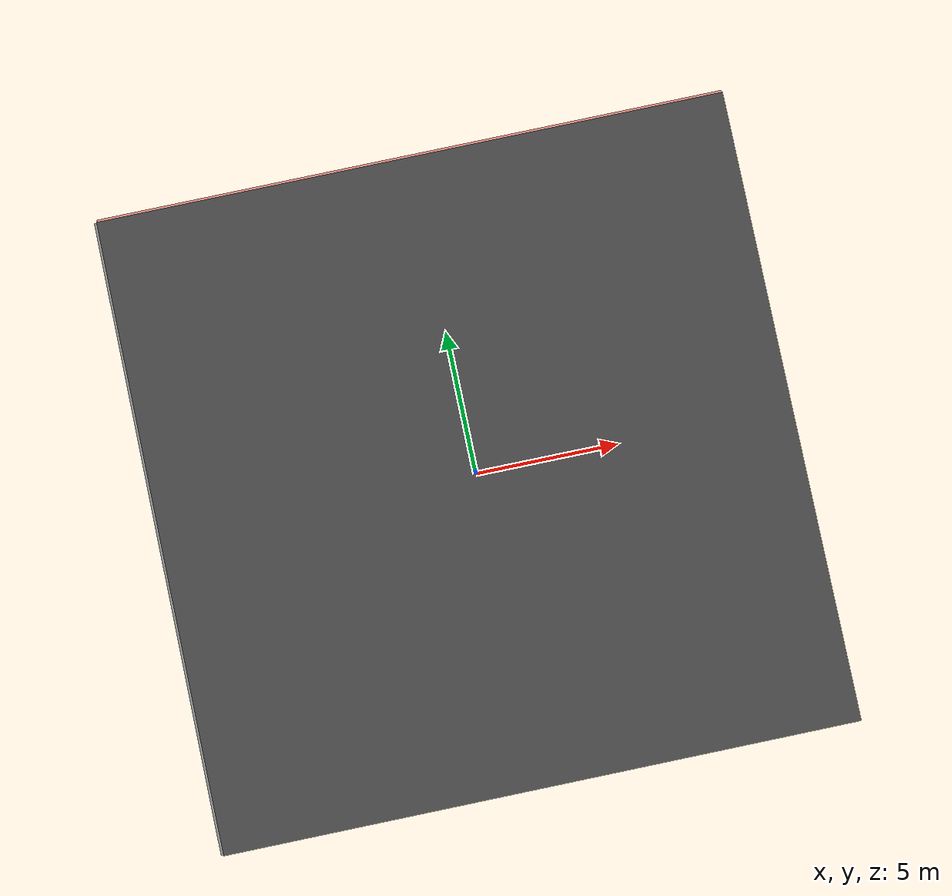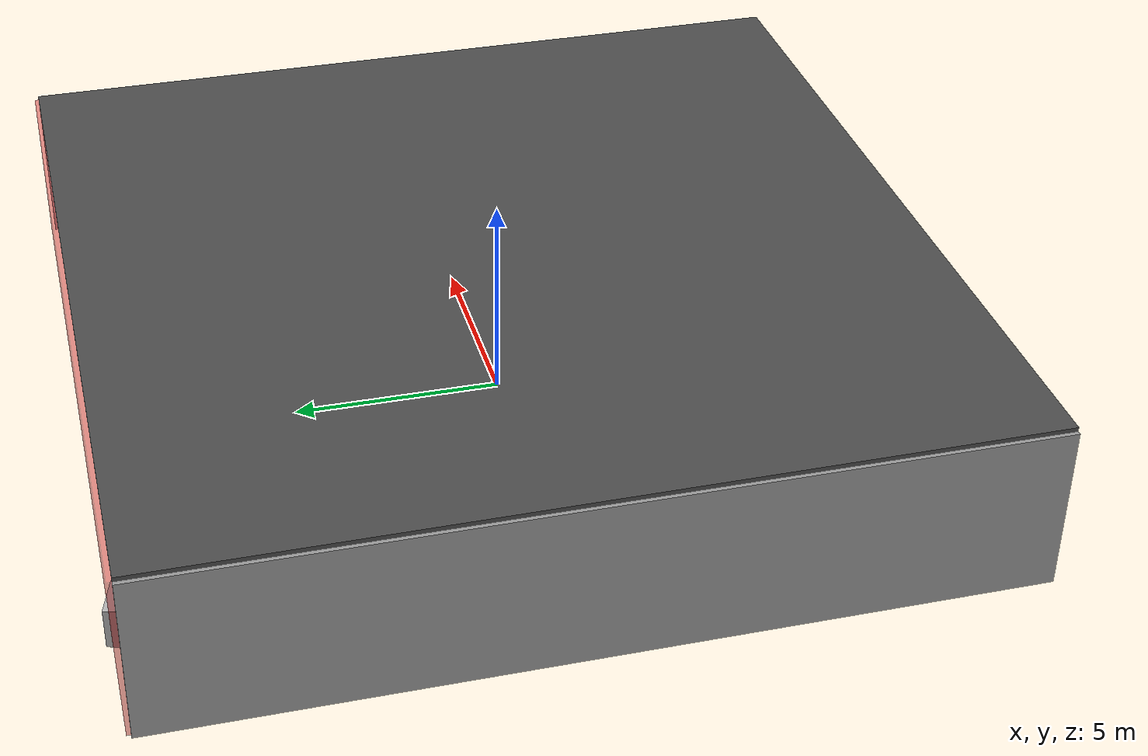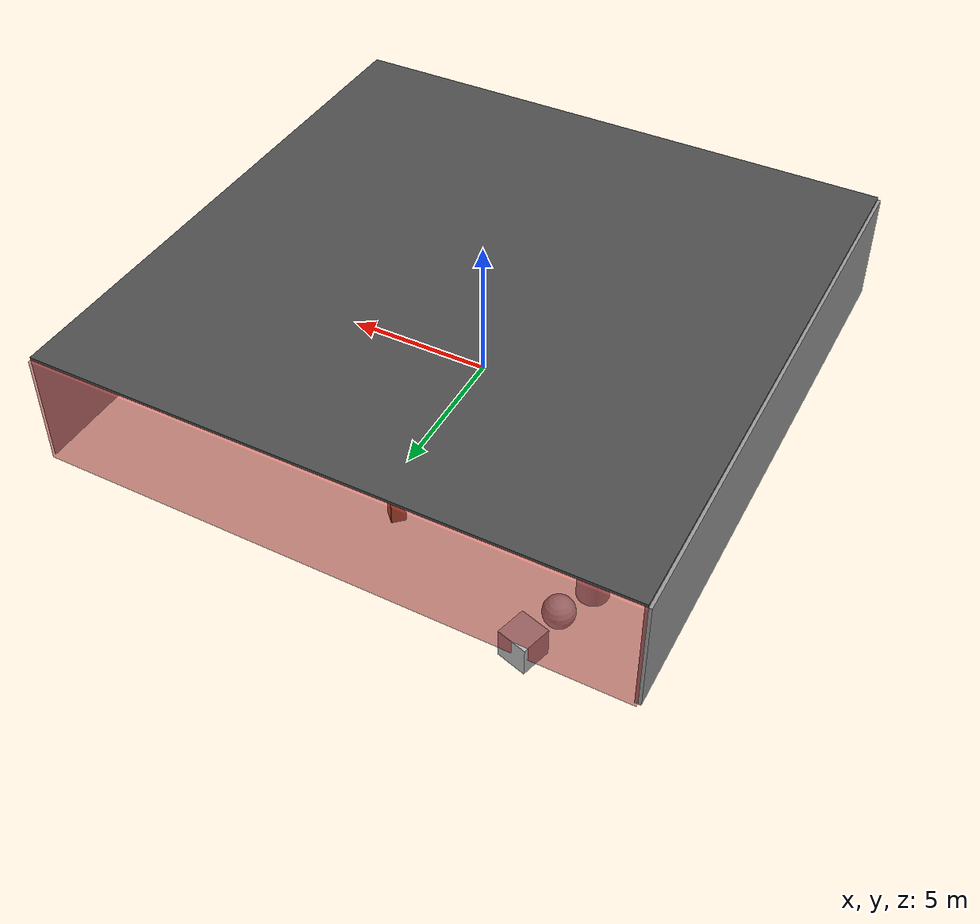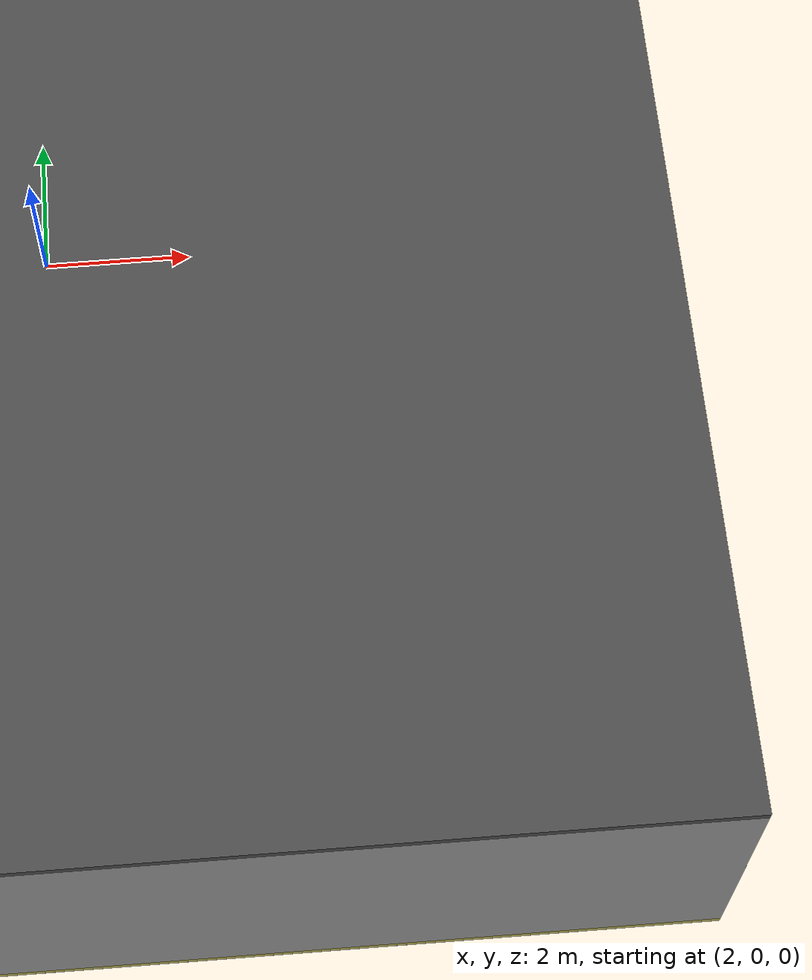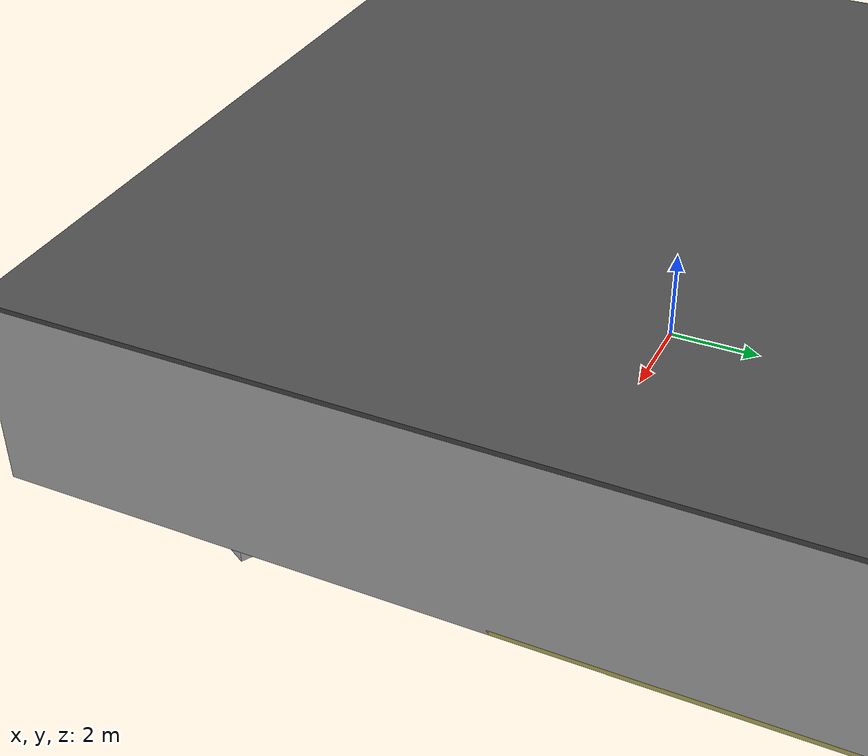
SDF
<sdf version="1.4">
 <world name="default">
  <physics type="ode">
   <max_step_size>0.001</max_step_size>
   <real_time_factor>1</real_time_factor>
   <real_time_update_rate>1000</real_time_update_rate>
   <gravity>0 0 -9.8</gravity>
  </physics>
  <scene><ambient>0.4 0.4 0.4 1</ambient><background>0.7 0.7 0.7 1</background><shadows>1</shadows></scene>
  <model name="Surrounding">
   <static>1</static>
   <link name="Ceiling">
    <collision name="Ceiling_Collision"><geometry><box><size>20 20 0.1</size></box></geometry></collision>
    <visual name="Ceiling_Visual">
     <geometry><box><size>20 20 0.1</size></box></geometry>
     <material>
      <script><uri>file://media/materials/scripts/gazebo.material</uri><name>Gazebo/Road</name></script>
     </material>
    </visual>
    <pose>0 0 4.05 0 0 0</pose>
   </link>
   <link name="Wall_South">
    <collision name="Wall_South_Collision">
     <geometry><box><size>20 0 4</size></box></geometry>
     <pose>0 0 2 0 -0 0</pose>
    </collision>
    <visual name="Wall_South_Visual">
     <pose>0 0 2 0 -0 0</pose>
     <geometry><box><size>20 0 4</size></box></geometry>
     <material>
      <script><uri>file://media/materials/scripts/gazebo.material</uri><name>Gazebo/GreyGradientSky</name></script>
     </material>
    </visual>
    <velocity_decay><linear>0</linear><angular>0</angular></velocity_decay>
    <pose>0 -10 0 0 -0 0</pose>
   </link>
   <link name="Wall_East">
    <collision name="Wall_21_Collision">
     <geometry><box><size>20 0 4</size></box></geometry>
     <pose>0 0 2 0 -0 0</pose>
    </collision>
    <visual name="Wall_21_Visual">
     <pose>0 0 2 0 -0 0</pose>
     <geometry><box><size>20 0 4</size></box></geometry>
     <material>
      <script><uri>file://media/materials/scripts/gazebo.material</uri><name>Gazebo/PioneerBody</name></script>
     </material>
    </visual>
    <velocity_decay><linear>0</linear><angular>0</angular></velocity_decay>
    <pose>10 0 0 0 -0 1.5708</pose>
   </link>
   <link name="Wall_North">
    <collision name="Wall_22_Collision">
     <geometry><box><size>20 0.2 4</size></box></geometry>
     <pose>0 0 2 0 -0 0</pose>
    </collision>
    <visual name="Wall_22_Visual">
     <pose>0 0 2 0 -0 0</pose>
     <geometry><box><size>20 0.2 4</size></box></geometry>
     <material>
      <script><uri>file://media/materials/scripts/gazebo.material</uri><name>Gazebo/RedTransparent</name></script>
     </material>
    </visual>
    <velocity_decay><linear>0</linear><angular>0</angular></velocity_decay>
    <pose>0 10 0 0 -0 0</pose>
   </link>
   <link name="Wall_West">
    <collision name="Wall_23_Collision">
     <geometry><box><size>20 0.2 4</size></box></geometry>
     <pose>0 0 2 0 -0 0</pose>
    </collision>
    <visual name="Wall_23_Visual">
     <pose>0 0 2 0 -0 0</pose>
     <geometry><box><size>20 0.2 4</size></box></geometry>
     <material>
      <script><uri>file://media/materials/scripts/gazebo.material</uri><name>Gazebo/Grey</name></script>
     </material>
    </visual>
    <velocity_decay><linear>0</linear><angular>0</angular></velocity_decay>
    <pose>-10 0 0 0 0 -1.5708</pose>
   </link>
   <link name="Ground_link">
    <collision name="collision">
     <pose>0 0 .05 0 -0 0</pose>
     <geometry><box><size>20 20 0.1</size></box></geometry>
    </collision>
    <visual name="visual">
     <pose>0 0 .05 0 -0 0</pose>
     <geometry><box><size>20 20 0.1</size></box></geometry>
     <material>
      <script>
       <uri>file://media/materials/scripts/gazebo.material</uri>
       <name>Gazebo/YellowTransparent</name>
      </script>
     </material>
    </visual>
   </link>
   <static>1</static>
  </model>
  <spherical_coordinates>
   <surface_model>EARTH_WGS84</surface_model>
   <latitude_deg>0</latitude_deg>
   <longitude_deg>0</longitude_deg>
   <elevation>0</elevation>
   <heading_deg>0</heading_deg>
  </spherical_coordinates>
  <light name="lightball_0" type="diffuse">
   <diffuse>0.8 0.8 0.8 1</diffuse>
   <specular>0.2 0.2 0.2 1</specular>
   <attenuation>
    <range>100</range>
    <constant>0.7</constant>
    <linear>0.01</linear>
    <quadratic>0.001</quadratic>
   </attenuation>
   <direction>-0.5 0.1 -0.9</direction>
   <pose>9.81573280358 -0.677854194364 1.25146909152 0 0 0</pose>
  </light>
  <light name="lightball_1" type="diffuse">
   <diffuse>0.8 0.8 0.8 1</diffuse>
   <specular>0.2 0.2 0.2 1</specular>
   <attenuation>
    <range>100</range>
    <constant>0.7</constant>
    <linear>0.01</linear>
    <quadratic>0.001</quadratic>
   </attenuation>
   <direction>-0.5 0.1 -0.9</direction>
   <pose>5.59421062461 -2.52281999643 2.60214932315 0 0 0</pose>
  </light>
  <light name="lightball_2" type="diffuse">
   <diffuse>0.8 0.8 0.8 1</diffuse>
   <specular>0.2 0.2 0.2 1</specular>
   <attenuation>
    <range>100</range>
    <constant>0.7</constant>
    <linear>0.01</linear>
    <quadratic>0.001</quadratic>
   </attenuation>
   <direction>-0.5 0.1 -0.9</direction>
   <pose>3.355909632 -2.84408816347 3.80494073281 0 0 0</pose>
  </light>
  <light name="lightball_3" type="diffuse">
   <diffuse>0.8 0.8 0.8 1</diffuse>
   <specular>0.2 0.2 0.2 1</specular>
   <attenuation>
    <range>100</range>
    <constant>0.7</constant>
    <linear>0.01</linear>
    <quadratic>0.001</quadratic>
   </attenuation>
   <direction>-0.5 0.1 -0.9</direction>
   <pose>-3.49957943511 1.65615761087 0.684738309069 0 0 0</pose>
  </light>
  <light name="lightball_4" type="diffuse">
   <diffuse>0.8 0.8 0.8 1</diffuse>
   <specular>0.2 0.2 0.2 1</specular>
   <attenuation>
    <range>100</range>
    <constant>0.7</constant>
    <linear>0.01</linear>
    <quadratic>0.001</quadratic>
   </attenuation>
   <direction>-0.5 0.1 -0.9</direction>
   <pose>-5.46212818186 4.22201070216 2.57813331061 0 0 0</pose>
  </light>
  <light name="lightball_5" type="diffuse">
   <diffuse>0.8 0.8 0.8 1</diffuse>
   <specular>0.2 0.2 0.2 1</specular>
   <attenuation>
    <range>100</range>
    <constant>0.7</constant>
    <linear>0.01</linear>
    <quadratic>0.001</quadratic>
   </attenuation>
   <direction>-0.5 0.1 -0.9</direction>
   <pose>1.48725607232 8.87089836732 3.88735221364 0 0 0</pose>
  </light>
  <light name="lightball_6" type="diffuse">
   <diffuse>0.8 0.8 0.8 1</diffuse>
   <specular>0.2 0.2 0.2 1</specular>
   <attenuation>
    <range>100</range>
    <constant>0.7</constant>
    <linear>0.01</linear>
    <quadratic>0.001</quadratic>
   </attenuation>
   <direction>-0.5 0.1 -0.9</direction>
   <pose>6.16081681713 -8.24025714108 2.9433405285 0 0 0</pose>
  </light>
  <light name="lightball_7" type="diffuse">
   <diffuse>0.8 0.8 0.8 1</diffuse>
   <specular>0.2 0.2 0.2 1</specular>
   <attenuation>
    <range>100</range>
    <constant>0.7</constant>
    <linear>0.01</linear>
    <quadratic>0.001</quadratic>
   </attenuation>
   <direction>-0.5 0.1 -0.9</direction>
   <pose>3.65046620022 9.4528276299 1.35852679284 0 0 0</pose>
  </light>
  <include>
   <uri>model://textured_shapes</uri>
   <pose>-6.78394134923 8.17254431553 0 0 0 2.86257811268</pose>
  </include>
  <include>
   <uri>model://textured_shapes</uri>
   <pose>-5.13439755647 -6.97390623494 0 0 0 1.62836523511</pose>
  </include>
  <include><uri>model://cabinet</uri><pose>-1.46799668043 4.75725078541 0 0 0 3.12555468801</pose></include>
  <include><uri>model://cabinet</uri><pose>-0.871374505038 7.16719612552 0 0 0 0.768034976692</pose></include>
  <include><uri>model://table</uri><pose>4.13777409736 -3.86045960308 0 0 0 3.06168239702</pose></include>
  <include><uri>model://cabinet</uri><pose>7.27996357279 -6.72264880864 0 0 0 0.0571624991539</pose></include>
  <include>
   <uri>model://textured_shapes</uri>
   <pose>7.77749231847 -4.46485648202 0 0 0 1.05121830145</pose>
  </include>
  <include><uri>model://cabinet</uri><pose>6.90851430894 -2.1581566207 0 0 0 2.95039339371</pose></include>
 </world>
</sdf>

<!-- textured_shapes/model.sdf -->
<sdf version="1.6">
  <model name="textured_shapes">
    <pose>0 0 0.5 0 0 0</pose>
    <link name="box">
      <pose>0 -1.5 0 0 0 0</pose>
      <collision name="collision">
        <geometry>
          <box>
            <size>1 1 1</size>
          </box>
        </geometry>
      </collision>
      <visual name="visual">
        <geometry>
          <box>
            <size>1 1 1</size>
          </box>
        </geometry>
        <material>
          <script>
            <uri>model://../model_source/models/textured_shapes/materials/scripts</uri>
            <uri>model://../model_source/models/textured_shapes/materials/textures</uri>
            <name>TexturedShape/Squares</name>
          </script>
        </material>
      </visual>
    </link>
    <link name="sphere">
      <collision name="collision">
        <geometry>
          <sphere>
            <radius>0.5</radius>
          </sphere>
        </geometry>
      </collision>
      <visual name="visual">
        <geometry>
          <sphere>
            <radius>0.5</radius>
          </sphere>
        </geometry>
        <material>
          <script>
            <uri>model://../model_source/models/textured_shapes/materials/scripts</uri>
            <uri>model://../model_source/models/textured_shapes/materials/textures</uri>
            <name>TexturedShape/Squares</name>
          </script>
        </material>
      </visual>
    </link>
    <link name="cylinder">
      <pose>0 1.5 0 0 0 0</pose>
      <collision name="collision">
        <geometry>
          <cylinder>
            <radius>0.5</radius>
            <length>1</length>
          </cylinder>
        </geometry>
      </collision>
      <visual name="visual">
        <geometry>
          <cylinder>
            <radius>0.5</radius>
            <length>1</length>
          </cylinder>
        </geometry>
        <material>
          <script>
            <uri>model://../model_source/models/textured_shapes/materials/scripts</uri>
            <uri>model://../model_source/models/textured_shapes/materials/textures</uri>
            <name>TexturedShape/Squares</name>
          </script>
        </material>
      </visual>
    </link>
  </model>
</sdf>

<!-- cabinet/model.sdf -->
<sdf version="1.5">
  <model name="cabinet">
    <static>true</static>
    <link name="cabinet_bottom_plate">
      <inertial>
        <pose>0 0 -1 0 0 0</pose>
        <inertia>
          <ixx>2.050000</ixx>
          <ixy>0</ixy>
          <ixz>0</ixz>
          <iyy>2.050000</iyy>
          <iyz>0</iyz>
          <izz>2.050000</izz>
        </inertia>
        <mass>25.000000</mass>
      </inertial>
      <collision name="cabinet_bottom_plate_geom">
        <pose>0 0 0.010000 0 0 0</pose>
        <geometry>
          <box>
            <size>0.450000 0.450000 0.020000</size>
          </box>
        </geometry>
      </collision>
      <visual name="cabinet_bottom_plate_geom_visual">
        <pose>0 0 0.010000 0 0 0</pose>
        <geometry>
          <box>
            <size>0.450000 0.450000 0.020000</size>
          </box>
        </geometry>
        <material>
          <script>
            <uri>model://media/materials/scripts/gazebo.material</uri>
            <name>Gazebo/Wood</name>
          </script>
        </material>
      </visual>
      <collision name="cabinet_bottom_plate_geom_cabinet_back_plate">
        <pose>0.235000 0 0.510000 0 0 0</pose>
        <geometry>
          <box>
            <size>0.020000 0.450000 1.020000</size>
          </box>
        </geometry>
      </collision>
      <visual name="cabinet_bottom_plate_geom_cabinet_back_plate_visual">
        <pose>0.235000 0 0.510000 0 0 0</pose>
        <geometry>
          <box>
            <size>0.020000 0.450000 1.020000</size>
          </box>
        </geometry>
        <material>
          <script>
            <uri>model://media/materials/scripts/gazebo.material</uri>
            <name>Gazebo/Wood</name>
          </script>
        </material>
      </visual>
      <collision name="cabinet_bottom_plate_geom_cabinet_left_plate">
        <pose>0 0.235000 0.510000 0 0 0</pose>
        <geometry>
          <box>
            <size>0.450000 0.020000 1.020000</size>
          </box>
        </geometry>
      </collision>
      <visual name="cabinet_bottom_plate_geom_cabinet_left_plate_visual">
        <pose>0 0.235000 0.510000 0 0 0</pose>
        <geometry>
          <box>
            <size>0.450000 0.020000 1.020000</size>
          </box>
        </geometry>
        <material>
          <script>
            <uri>model://media/materials/scripts/gazebo.material</uri>
            <name>Gazebo/Wood</name>
          </script>
        </material>
      </visual>
      <collision name="cabinet_bottom_plate_geom_cabinet_middle_plate">
        <pose>0 0 0.510000 0 0 0</pose>
        <geometry>
          <box>
            <size>0.450000 0.450000 0.020000</size>
          </box>
        </geometry>
      </collision>
      <visual name="cabinet_bottom_plate_geom_cabinet_middle_plate_visual">
        <pose>0 0 0.510000 0 0 0</pose>
        <geometry>
          <box>
            <size>0.450000 0.450000 0.020000</size>
          </box>
        </geometry>
        <material>
          <script>
            <uri>model://media/materials/scripts/gazebo.material</uri>
            <name>Gazebo/Wood</name>
          </script>
        </material>
      </visual>
      <collision name="cabinet_bottom_plate_geom_cabinet_right_plate">
        <pose>0 -0.235000 0.510000 0 0 0</pose>
        <geometry>
          <box>
            <size>0.450000 0.020000 1.020000</size>
          </box>
        </geometry>
      </collision>
      <visual name="cabinet_bottom_plate_geom_cabinet_right_plate_visual">
        <pose>0 -0.235000 0.510000 0 0 0</pose>
        <geometry>
          <box>
            <size>0.450000 0.020000 1.020000</size>
          </box>
        </geometry>
        <material>
          <script>
            <uri>model://media/materials/scripts/gazebo.material</uri>
            <name>Gazebo/Wood</name>
          </script>
        </material>
      </visual>
      <collision name="cabinet_bottom_plate_geom_cabinet_top_plate">
        <pose>0 0 1.010000 0 0 0</pose>
        <geometry>
          <box>
            <size>0.450000 0.450000 0.020000</size>
          </box>
        </geometry>
      </collision>
      <visual name="cabinet_bottom_plate_geom_cabinet_top_plate_visual">
        <pose>0 0 1.010000 0 0 0</pose>
        <geometry>
          <box>
            <size>0.450000 0.450000 0.020000</size>
          </box>
        </geometry>
        <material>
          <script>
            <uri>model://media/materials/scripts/gazebo.material</uri>
            <name>Gazebo/Wood</name>
          </script>
        </material>
      </visual>
    </link>
  </model>
</sdf>

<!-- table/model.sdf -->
<sdf version="1.5">
  <model name="table">
    <static>true</static>
    <link name="link">
      <collision name="surface">
        <pose>0 0 1.0 0 0 0</pose>
        <geometry>
          <box>
            <size>1.5 0.8 0.03</size>
          </box>
        </geometry>
        <surface>
          <friction>
            <ode>
              <mu>0.6</mu>
              <mu2>0.6</mu2>
            </ode>
          </friction>
        </surface>
      </collision>
      <visual name="visual1">
        <pose>0 0 1.0 0 0 0</pose>
        <geometry>
          <box>
            <size>1.5 0.8 0.03</size>
          </box>
        </geometry>
        <material>
          <script>
            <uri>model://media/materials/scripts/gazebo.material</uri>
            <name>Gazebo/Wood</name>
          </script>
        </material>
      </visual>
      <collision name="front_left_leg">
        <pose>0.68 0.38 0.5 0 0 0</pose>
        <geometry>
          <cylinder>
            <radius>0.02</radius>
            <length>1.0</length>
          </cylinder>
        </geometry>
      </collision>
      <visual name="front_left_leg">
        <pose>0.68 0.38 0.5 0 0 0</pose>
        <geometry>
          <cylinder>
            <radius>0.02</radius>
            <length>1.0</length>
          </cylinder>
        </geometry>
        <material>
          <script>
            <uri>model://media/materials/scripts/gazebo.material</uri>
            <name>Gazebo/Grey</name>
          </script>
        </material>
      </visual>
      <collision name="front_right_leg">
        <pose>0.68 -0.38 0.5 0 0 0</pose>
        <geometry>
          <cylinder>
            <radius>0.02</radius>
            <length>1.0</length>
          </cylinder>
        </geometry>
      </collision>
      <visual name="front_right_leg">
        <pose>0.68 -0.38 0.5 0 0 0</pose>
        <geometry>
          <cylinder>
            <radius>0.02</radius>
            <length>1.0</length>
          </cylinder>
        </geometry>
        <material>
          <script>
            <uri>model://media/materials/scripts/gazebo.material</uri>
            <name>Gazebo/Grey</name>
          </script>
        </material>
      </visual>
      <collision name="back_right_leg">
        <pose>-0.68 -0.38 0.5 0 0 0</pose>
        <geometry>
          <cylinder>
            <radius>0.02</radius>
            <length>1.0</length>
          </cylinder>
        </geometry>
      </collision>
      <visual name="back_right_leg">
        <pose>-0.68 -0.38 0.5 0 0 0</pose>
        <geometry>
          <cylinder>
            <radius>0.02</radius>
            <length>1.0</length>
          </cylinder>
        </geometry>
        <material>
          <script>
            <uri>model://media/materials/scripts/gazebo.material</uri>
            <name>Gazebo/Grey</name>
          </script>
        </material>
      </visual>
      <collision name="back_left_leg">
        <pose>-0.68 0.38 0.5 0 0 0</pose>
        <geometry>
          <cylinder>
            <radius>0.02</radius>
            <length>1.0</length>
          </cylinder>
        </geometry>
      </collision>
      <visual name="back_left_leg">
        <pose>-0.68 0.38 0.5 0 0 0</pose>
        <geometry>
          <cylinder>
            <radius>0.02</radius>
            <length>1.0</length>
          </cylinder>
        </geometry>
        <material>
          <script>
            <uri>model://media/materials/scripts/gazebo.material</uri>
            <name>Gazebo/Grey</name>
          </script>
        </material>
      </visual>
    </link>
  </model>
</sdf>
